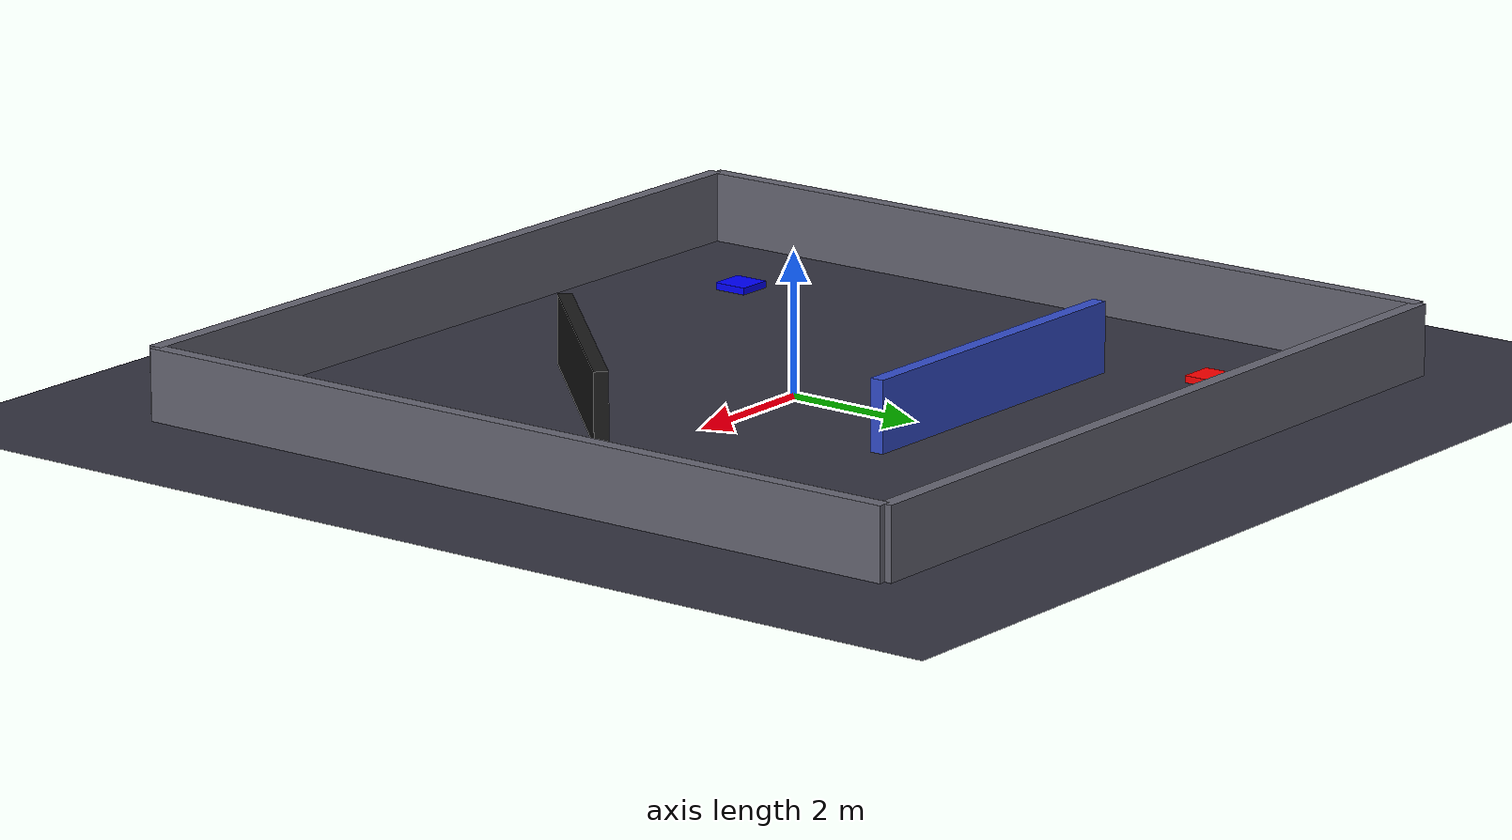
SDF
<?xml version="1.0" ?>
<sdf version="1.6">
  <world name="game_style_map">

    <!-- 必须插件：手动写 plugin 后，默认插件不会自动加载 -->
    <plugin filename="gz-sim-physics-system"
            name="gz::sim::systems::Physics">
    </plugin>

    <plugin filename="gz-sim-user-commands-system"
            name="gz::sim::systems::UserCommands">
    </plugin>

    <plugin filename="gz-sim-scene-broadcaster-system"
            name="gz::sim::systems::SceneBroadcaster">
    </plugin>

    <plugin filename="gz-sim-sensors-system"
            name="gz::sim::systems::Sensors">
      <render_engine>ogre2</render_engine>
    </plugin>

    <!-- ================= 光照优化 ================= -->
    <light name="sun" type="directional">
      <cast_shadows>true</cast_shadows>
      <pose>0 0 20 0 0 0</pose>
      <diffuse>1 1 1 1</diffuse>
      <specular>0.3 0.3 0.3 1</specular>
      <direction>-0.4 0.4 -1</direction>
    </light>

    <!-- ================= 地面（游戏风格） ================= -->
    <model name="ground">
      <static>true</static>
      <link name="link">
        <collision name="collision">
          <geometry>
            <plane>
              <normal>0 0 1</normal>
              <size>100 100</size>
            </plane>
          </geometry>
        </collision>

        <visual name="visual">
          <geometry>
            <plane>
              <normal>0 0 1</normal>
              <size>100 100</size>
            </plane>
          </geometry>
          <material>
            <ambient>0.15 0.15 0.18 1</ambient>
            <diffuse>0.2 0.2 0.25 1</diffuse>
            <specular>0.1 0.1 0.1 1</specular>
          </material>
        </visual>
      </link>
    </model>

    <!-- ================= 外围墙 ================= -->
    <model name="wall_top">
      <static>true</static>
      <link name="link">
        <collision name="col">
          <geometry><box><size>12 0.2 1</size></box></geometry>
        </collision>
        <visual name="vis">
          <geometry><box><size>12 0.2 1</size></box></geometry>
          <material>
            <ambient>0.3 0.3 0.35 1</ambient>
            <diffuse>0.4 0.4 0.45 1</diffuse>
          </material>
        </visual>
      </link>
      <pose>0 6 0.5 0 0 0</pose>
    </model>

    <model name="wall_bottom">
      <static>true</static>
      <link name="link">
        <collision name="col">
          <geometry><box><size>12 0.2 1</size></box></geometry>
        </collision>
        <visual name="vis">
          <geometry><box><size>12 0.2 1</size></box></geometry>
          <material>
            <ambient>0.3 0.3 0.35 1</ambient>
            <diffuse>0.4 0.4 0.45 1</diffuse>
          </material>
        </visual>
      </link>
      <pose>0 -6 0.5 0 0 0</pose>
    </model>

    <model name="wall_left">
      <static>true</static>
      <link name="link">
        <collision name="col">
          <geometry><box><size>0.2 12 1</size></box></geometry>
        </collision>
        <visual name="vis">
          <geometry><box><size>0.2 12 1</size></box></geometry>
          <material>
            <ambient>0.3 0.3 0.35 1</ambient>
            <diffuse>0.4 0.4 0.45 1</diffuse>
          </material>
        </visual>
      </link>
      <pose>-6 0 0.5 0 0 0</pose>
    </model>

    <model name="wall_right">
      <static>true</static>
      <link name="link">
        <collision name="col">
          <geometry><box><size>0.2 12 1</size></box></geometry>
        </collision>
        <visual name="vis">
          <geometry><box><size>0.2 12 1</size></box></geometry>
          <material>
            <ambient>0.3 0.3 0.35 1</ambient>
            <diffuse>0.4 0.4 0.45 1</diffuse>
          </material>
        </visual>
      </link>
      <pose>6 0 0.5 0 0 0</pose>
    </model>

    <!-- ================= 内部墙 ================= -->
    <model name="inner_wall">
      <static>true</static>
      <link name="link">
        <collision name="col">
          <geometry><box><size>5 0.2 1</size></box></geometry>
        </collision>
        <visual name="vis">
          <geometry><box><size>5 0.2 1</size></box></geometry>
          <material>
            <ambient>0.1 0.2 0.6 1</ambient>
            <diffuse>0.2 0.3 0.8 1</diffuse>
          </material>
        </visual>
      </link>
      <pose>-1 2.5 0.5 0 0 0</pose>
    </model>

    <!-- ================= 斜线障碍 ================= -->
    <model name="diagonal">
      <static>true</static>
      <link name="link">
        <collision name="col">
          <geometry><box><size>4 0.2 1</size></box></geometry>
        </collision>
        <visual name="vis">
          <geometry><box><size>4 0.2 1</size></box></geometry>
          <material>
            <ambient>0.05 0.05 0.05 1</ambient>
            <diffuse>0.1 0.1 0.1 1</diffuse>
          </material>
        </visual>
      </link>
      <pose>2 -2 0.5 0 0 0.8</pose>
    </model>

    <!-- ================= 发光目标点 ================= -->
    <model name="goal_red">
      <static>true</static>
      <link name="link">
        <collision name="col">
          <geometry><box><size>0.5 0.5 0.1</size></box></geometry>
        </collision>
        <visual name="vis">
          <geometry><box><size>0.5 0.5 0.1</size></box></geometry>
          <material>
            <ambient>1 0 0 1</ambient>
            <diffuse>1 0 0 1</diffuse>
            <emissive>1 0 0 1</emissive>
          </material>
        </visual>
      </link>
      <pose>-4 4 0.05 0 0 0</pose>
    </model>

    <model name="goal_blue">
      <static>true</static>
      <link name="link">
        <collision name="col">
          <geometry><box><size>0.5 0.5 0.1</size></box></geometry>
        </collision>
        <visual name="vis">
          <geometry><box><size>0.5 0.5 0.1</size></box></geometry>
          <material>
            <ambient>0 0 1 1</ambient>
            <diffuse>0 0 1 1</diffuse>
            <emissive>0 0 1 1</emissive>
          </material>
        </visual>
      </link>
      <pose>-4 -4 0.05 0 0 0</pose>
    </model>

    <model name="goal_yellow">
      <static>true</static>
      <link name="link">
        <collision name="col">
          <geometry><box><size>0.5 0.5 0.1</size></box></geometry>
        </collision>
        <visual name="vis">
          <geometry><box><size>0.5 0.5 0.1</size></box></geometry>
          <material>
            <ambient>1 1 0 1</ambient>
            <diffuse>1 1 0 1</diffuse>
            <emissive>1 1 0 1</emissive>
          </material>
        </visual>
      </link>
      <pose>4 4 0.05 0 0 0</pose>
    </model>

  </world>
</sdf>
